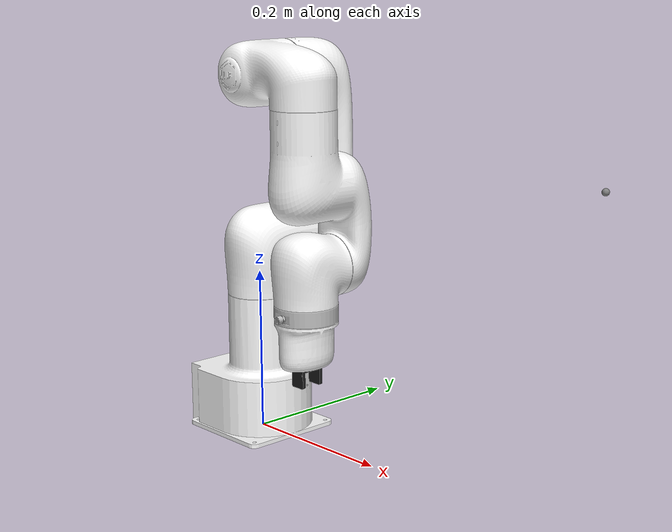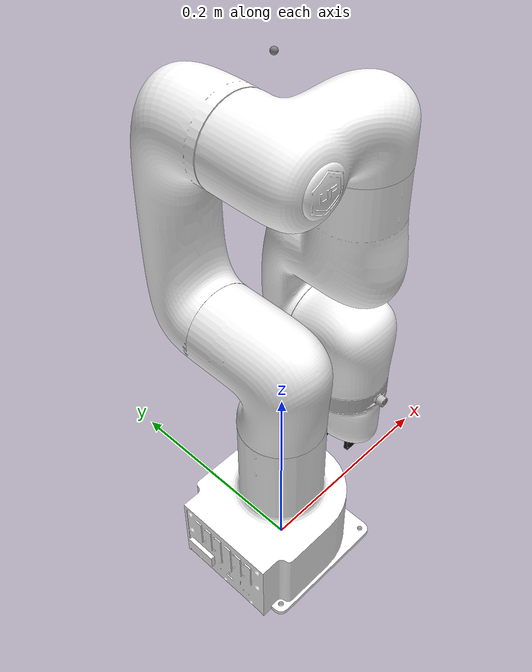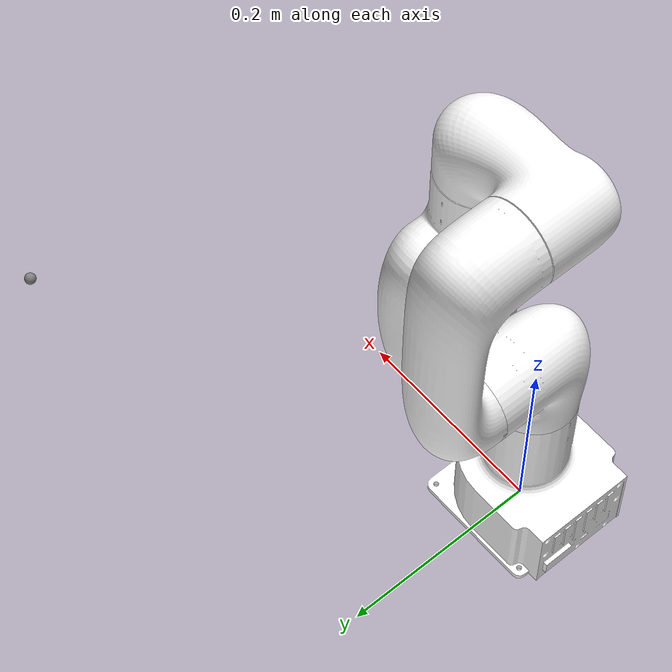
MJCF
<mujoco model="ufactory_lite6">
  <compiler angle="radian" meshdir="../../mujoco_menagerie/ufactory_lite6/assets" autolimits="true"/>
  <option integrator="implicitfast"/>

  <include file="realsense_d435.xml"/>
  <default>
    <default class="lite6">
      <geom type="mesh"/>
      <joint axis="0 0 1" damping="1" armature="0.1"/>

      <default class="size1">
        <general forcerange="-50 50"/>
      </default>
      <default class="size2">
        <general forcerange="-32 32"/>
      </default>
      <default class="size3">
        <general forcerange="-20 20"/>
      </default>

      <default class="visual">
        <geom contype="0" conaffinity="0" group="2" material="white"/>
        <default class="target">
          <geom type="box" size=".015"/>
        </default>
      </default>
      <default class="collision">
        <geom group="3" mass="0" density="0"/>
      </default>

    </default>
  </default>

  <asset>
    <material name="white" rgba="1 1 1 1"/>
    <material name="silver" rgba=".753 .753 .753 1"/>
    <material name="black" rgba=".1 .1 .1 1"/>

    <mesh file="visual/link_base.stl"/>
    <mesh file="visual/link1.stl"/>
    <mesh file="visual/link2.stl"/>
    <mesh file="visual/link3.stl"/>
    <mesh file="visual/link4.stl"/>
    <mesh file="visual/link5.stl"/>
    <mesh file="visual/link6.stl"/>
    <mesh file="visual/gripper_lite_body.stl"/>
    <mesh file="visual/gripper_lite_left_finger_wide.stl"/>
    <mesh file="visual/gripper_lite_right_finger_wide.stl"/>
    <mesh name="link_base_c" file="collision/link_base.stl"/>
    <mesh name="link1_c" file="collision/link1.stl"/>
    <mesh name="link2_c" file="collision/link2.stl"/>
    <mesh name="link3_c" file="collision/link3.stl"/>
    <mesh name="link4_c" file="collision/link4.stl"/>
    <mesh name="link5_c" file="collision/link5.stl"/>
    <mesh name="link6_c" file="collision/link6.stl"/>
    <mesh name="gripper_lite_body_c" file="collision/gripper_lite_body.stl"/>
    <mesh file="collision/gripper_lite_left_finger_wide_base.stl"/>
    <mesh file="collision/gripper_lite_right_finger_wide_base.stl"/>
    <mesh file="collision/gripper_lite_left_finger_wide_tip.stl"/>
    <mesh file="collision/gripper_lite_right_finger_wide_tip.stl"/>
  </asset>

  <worldbody>

    <body name="link_base" childclass="lite6">
      <inertial pos="-0.00829545 3.26357e-05 0.0631195" mass="1.65394" diaginertia="0 0 0"/>
      <!-- Angled down 25 deg -->
      <camera name="side_cam" class="realsense_d435i_rgb_640" mode="fixed" pos="1.2 0 0.4" quat="0.560985526796931 0.43045933457687946 0.4304593345768794 0.5609855267969309"/>
      <geom class="visual" mesh="link_base"/>
      <geom name="link_base_c" class="collision" mesh="link_base_c"/>
      <body name="link1" pos="0 0 0.2435">
        <inertial pos="-0.00036 0.04195 -0.0025" quat="0.608059 0.792349 -0.0438707 0.0228718" mass="1.411"
          diaginertia="0.00145276 0.00135275 0.000853355"/>
        <joint name="joint1" range="-6.28319 6.28319"/>
        <geom class="visual" mesh="link1"/>
        <geom name="link1_c" class="collision" mesh="link1_c"/>
        <body name="link2" quat="-1 1 1 1">
          <inertial pos="0.179 0 0.0584" quat="0.417561 0.571619 0.569585 0.417693" mass="1.34"
            diaginertia="0.00560971 0.0052152 0.00122018"/>
          <joint name="joint2" range="-2.61799 2.61799"/>
          <geom class="visual" mesh="link2"/>
          <geom name="link2_c" class="collision" mesh="link2_c"/>
          <body name="link3" pos="0.2002 0 0" quat="-2.59734e-06 -0.707105 -0.707108 -2.59735e-06">
            <inertial pos="0.072 -0.0357 -0.001" quat="0.128259 0.662963 -0.167256 0.71837" mass="0.953"
              diaginertia="0.0018521 0.00175546 0.000703807"/>
            <joint name="joint3" range="-0.061087 5.23599"/>
            <geom class="visual" mesh="link3"/>
            <geom name="link3_c" class="collision" mesh="link3_c"/>
            <body name="link4" pos="0.087 -0.22761 0" quat="0.707105 0.707108 0 0">
              <inertial pos="-0.002 -0.0285 -0.0813" quat="0.975248 0.22109 0.00203498 -0.00262178" mass="1.284"
                diaginertia="0.00370503 0.00349091 0.00109586"/>
              <joint name="joint4" range="-6.28319 6.28319"/>
              <geom class="visual" mesh="link4"/>
              <geom name="link4_c" class="collision" mesh="link4_c"/>
              <body name="link5" quat="1 1 0 0">
                <inertial pos="0 0.01 0.0019" quat="0.71423 0.696388 -0.0531933 0.0456997" mass="0.804"
                  diaginertia="0.000567553 0.000529266 0.000507681"/>
                <joint name="joint5" range="-2.1642 2.1642"/>
                <geom class="visual" mesh="link5"/>
                <geom name="link5_c" class="collision" mesh="link5_c"/>
                <body name="link6" pos="0 0.0625 0" quat="1 -1 0 0">
                  <inertial pos="0 -0.00194 -0.0102" quat="-0.0376023 0.704057 0.0446838 0.707738" mass="0.13"
                    diaginertia="0.000148148 8.57757e-05 7.71412e-05"/>
                  <joint name="joint6" range="-6.28319 6.28319"/>
                  <geom class="visual" mesh="link6" material="silver"/>
                  <geom name="link6_c" class="collision" mesh="link6_c"/>
                  <site name="attachment_site"/>
                  <camera name="gripper_cam" class="realsense_d435i_rgb_640" mode="fixed" pos="0.1 0 0" euler="3.141592653589793 0.7 -1.5707963267948966"/>
                  <body name="gripper_body" pos="0 0 0" quat="1 0 0 0">
                    <inertial pos="0.0 0.0 0.026" quat="1 0 0 0" mass="0.26"
                      diaginertia="0.00016117 0.000118 0.00014455" />
                    <geom class="visual" mesh="gripper_lite_body" material="white"/>
                    <geom name="gripper_lite_body_c" class="collision" mesh="gripper_lite_body_c"/>
                    <!-- Finger and base separated to avoid convex hull preventing gripping -->
                    <body name="gripper_left_finger" pos="0 0 0.054" quat="1 0 0 0">
                      <inertial pos="0.0 -0.01 0.01" quat="1 0 0 0" mass="0.024"
                        diaginertia="1.961e-6 2.274e-6 1.238e-6" />
                      <joint name="gripper_left_finger" pos="0 0 0" axis="0 1 0" type="slide" limited="true" range="-0.0081 -1e-5" frictionloss="0.4" />
                      <geom mesh="gripper_lite_left_finger_wide" class="visual" material="black"/>
                      <geom name="gripper_left_finger_base" class="collision" mesh="gripper_lite_left_finger_wide_base" material="black" condim="1" solimp="2 1 0.01" solref="0.01 1" friction="6 0.5 0.1"/>
                      <geom name="gripper_left_finger" class="collision" mesh="gripper_lite_left_finger_wide_tip" material="black" condim="4" solimp="2 1 0.01" solref="0.01 1" friction="6 0.5 0.1"/>
                    </body>
                    <body name="gripper_right_finger" pos="0 0 0.054" quat="1 0 0 0">
                      <inertial pos="0.0 0.01 0.01" quat="1 0 0 0" mass="0.024"
                        diaginertia="1.961e-6 2.274e-6 1.238e-6" />
                      <joint name="gripper_right_finger" pos="0 0 0" axis="0 1 0" type="slide" limited="true" range="1e-5 0.0081" frictionloss="0.4" />
                      <geom mesh="gripper_lite_right_finger_wide" class="visual" material="black"/>
                      <geom name="gripper_right_finger_base" class="collision" mesh="gripper_lite_right_finger_wide_base" material="black" condim="1" solimp="2 1 0.01" solref="0.01 1" friction="5 0.5 0.1"/>
                      <geom name="gripper_right_finger" class="collision" mesh="gripper_lite_right_finger_wide_tip" material="black" condim="4" solimp="2 1 0.01" solref="0.01 1" friction="5 0.5 0.1"/>
                    </body>
                    <!-- End effector reference point is in the centre at the tip of the grippers -->
                    <site name="end_effector" pos="0 0 0.0811" size="0.001 0.001 0.001" rgba="0.5 0.5 0.5 0.2"/>
                  </body>
                </body>
              </body>
            </body>
          </body>
        </body>
      </body>
    </body>

    <!-- Scene objects for visualisation -->

    <!-- Free floating target body to visualise target/goal pose, with rectangular prism ends for distinction-->
    <body name="target" pos=".3 .3 .3" quat="1 0 0 0" mocap="true">
      <site name="target" group="2"/>
    </body>
  </worldbody>

  <actuator>
    <position joint="joint1" group="1" class="size1" kp="2000" kv="600" ctrlrange="-6.28319 6.28319" />
    <position joint="joint2" group="1" class="size1" kp="2000" kv="600" ctrlrange="-2.61799 2.61799" />
    <position joint="joint3" group="1" class="size2" kp="2000" kv="600" ctrlrange="-0.061087 5.23599" />
    <position joint="joint4" group="1" class="size2" kp="2000" kv="600" ctrlrange="-6.28319 6.28319" />
    <position joint="joint5" group="1" class="size2" kp="2000" kv="600" ctrlrange="-2.1642 2.1642" />
    <position joint="joint6" group="1" class="size3" kp="2000" kv="600" ctrlrange="-6.28319 6.28319" />

    <velocity joint="joint1" group="2" class="size1" kv="600" ctrlrange="-4 4" />
    <velocity joint="joint2" group="2" class="size1" kv="600" ctrlrange="-4 4" />
    <velocity joint="joint3" group="2" class="size2" kv="600" ctrlrange="-4 4" />
    <velocity joint="joint4" group="2" class="size2" kv="600" ctrlrange="-4 4" />
    <velocity joint="joint5" group="2" class="size2" kv="600" ctrlrange="-4 4" />
    <velocity joint="joint6" group="2" class="size3" kv="600" ctrlrange="-4 4" />
    <!-- TODO: Should it also be halved due to doubling with the right finger? -->
    <motor name="gripper" joint="gripper_left_finger" group="0" forcerange="-10 10" ctrlrange="-10 10"/>
  </actuator>

  <equality>
    <joint joint1="gripper_left_finger" joint2="gripper_right_finger" polycoef="0 -1 0 0 0"/>
  </equality>

  <!-- Keep in mind this is a bit field so use powers of 2, i.e. 2**group_id -->
  <option actuatorgroupdisable="2" />

</mujoco>

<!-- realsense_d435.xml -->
<mujoco model="d435i">
    <default>
      <default class="realsense_d435i_rgb_1920">
        <camera fovy="43.04" resolution="1920 1080"/>
      </default>
      <default class="realsense_d435i_rgb_1280">
        <camera fovy="43.04" resolution="1280 720"/>
      </default>
      <default class="realsense_d435i_rgb_640">
        <camera fovy="43.04" resolution="640 480"/>
      </default>
      <!-- The stereo options seem to be a pain in the ass to get working as you need to create a scene object and call mjv_updateScene  -->
      <default class="realsense_d435i_stereo_1280">
        <camera fovy="58.55" resolution="1280 720" ipd="0.0501560494303703"/>
      </default>
      <default class="realsense_d435i_stereo_848">
        <camera fovy="58.86" resolution="848 480" ipd="0.0501560494303703"/>
      </default>
      <default class="realsense_d435i_stereo_640">
        <camera fovy="63.84" resolution="640 480" ipd="0.0501560494303703"/>
      </default>
    </default>
</mujoco>
